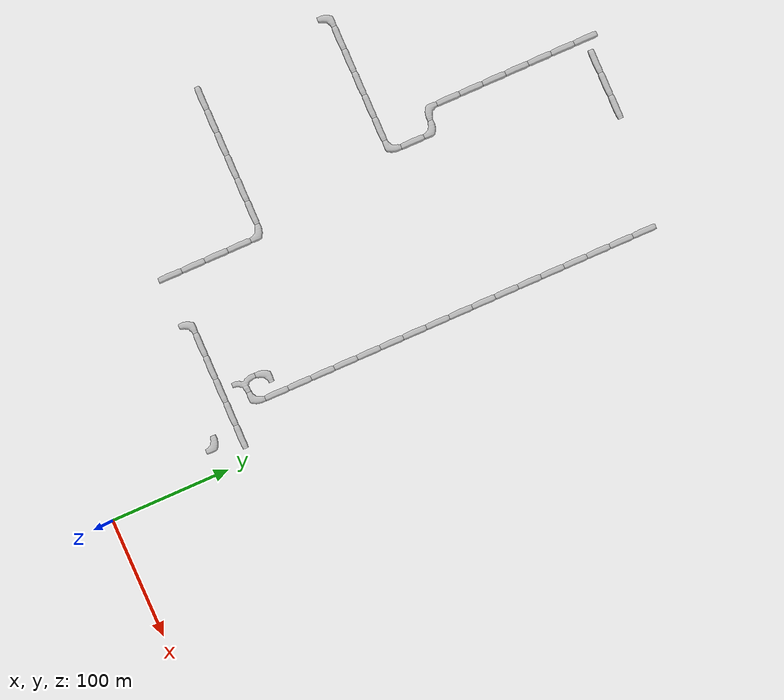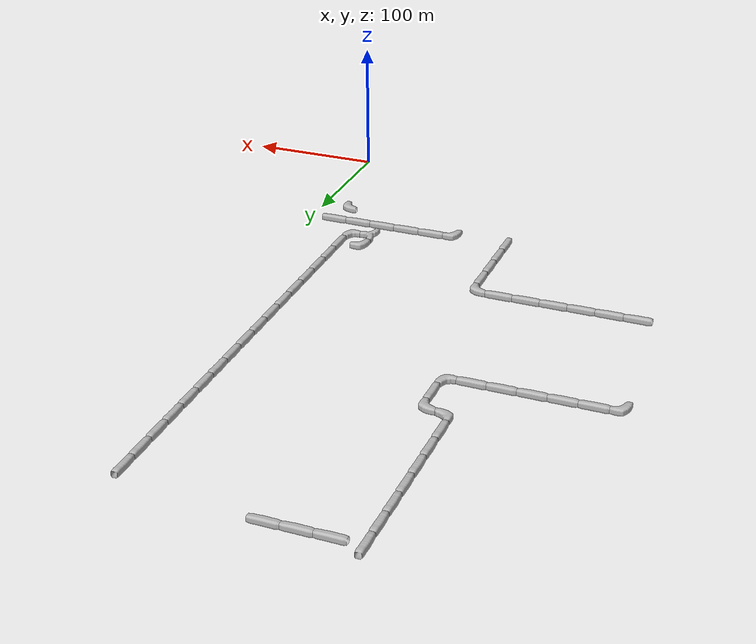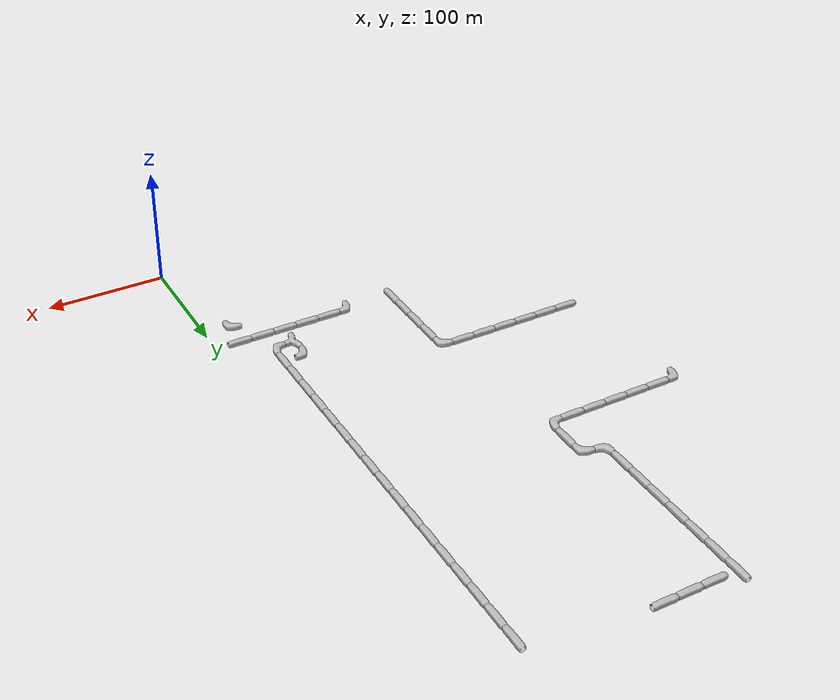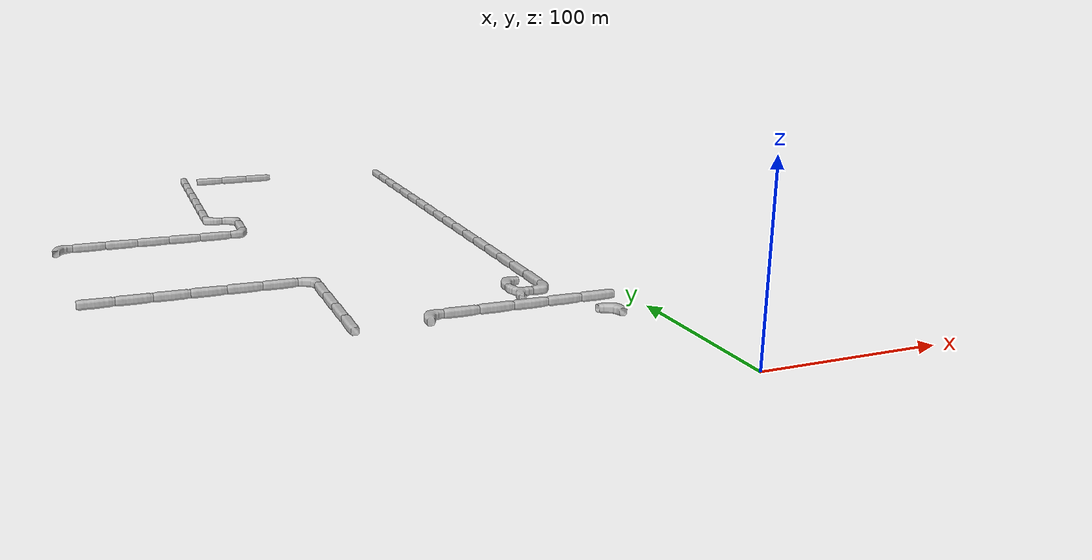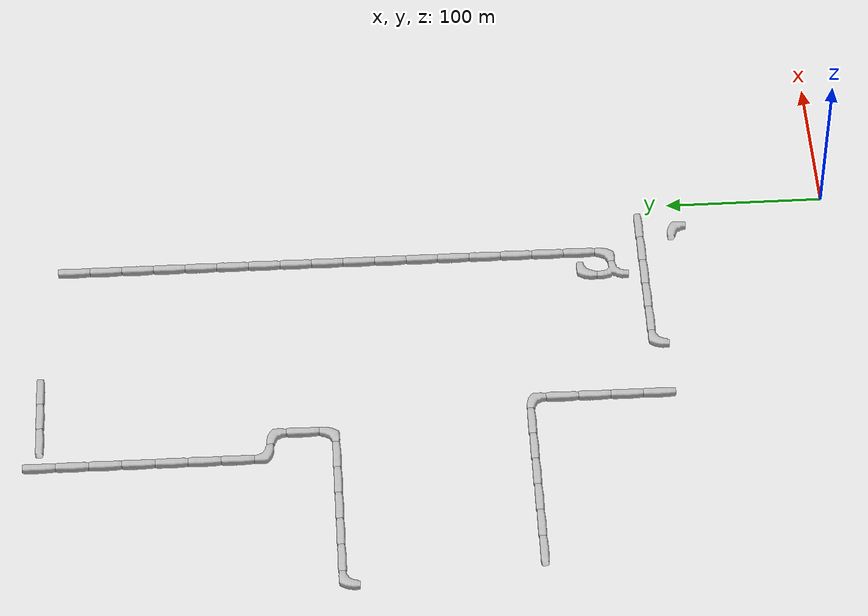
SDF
<sdf version="1.6">
 <world name="cave_32000_4">
  <include>
   <static>true</static>
   <name>cave_-8_6</name>
   <pose>-160 120 0 0 0 0.0</pose>
   <uri>model://cave_straight_20m</uri>
  </include>
  <include>
   <static>true</static>
   <name>cave_-8_7</name>
   <pose>-160 140 0 0 0 0.0</pose>
   <uri>model://cave_straight_20m</uri>
  </include>
  <include>
   <static>true</static>
   <name>cave_-8_8</name>
   <pose>-160 160 0 0 0 0.0</pose>
   <uri>model://cave_straight_20m</uri>
  </include>
  <include>
   <static>true</static>
   <name>cave_-8_9</name>
   <pose>-160 180 0 0 0 0.0</pose>
   <uri>model://cave_straight_20m</uri>
  </include>
  <include>
   <static>true</static>
   <name>cave_-8_10</name>
   <pose>-160 200 0 0 0 3.141592653589793</pose>
   <uri>model://cave_L_20m</uri>
  </include>
  <include>
   <static>true</static>
   <name>cave_-9_10</name>
   <pose>-180 200 0 0 0 1.5707963267948966</pose>
   <uri>model://cave_straight_20m</uri>
  </include>
  <include>
   <static>true</static>
   <name>cave_-10_10</name>
   <pose>-200 200 0 0 0 1.5707963267948966</pose>
   <uri>model://cave_straight_20m</uri>
  </include>
  <include>
   <static>true</static>
   <name>cave_-11_10</name>
   <pose>-220 200 0 0 0 1.5707963267948966</pose>
   <uri>model://cave_straight_20m</uri>
  </include>
  <include>
   <static>true</static>
   <name>cave_-12_10</name>
   <pose>-240 200 0 0 0 1.5707963267948966</pose>
   <uri>model://cave_straight_20m</uri>
  </include>
  <include>
   <static>true</static>
   <name>cave_-13_10</name>
   <pose>-260 200 0 0 0 1.5707963267948966</pose>
   <uri>model://cave_straight_20m</uri>
  </include>
  <include>
   <static>true</static>
   <name>cave_-14_10</name>
   <pose>-280 200 0 0 0 1.5707963267948966</pose>
   <uri>model://cave_straight_20m</uri>
  </include>
  <include>
   <static>true</static>
   <name>cave_-15_16</name>
   <pose>-300 320 0 0 0 -1.5707963267948966</pose>
   <uri>model://cave_L_20m</uri>
  </include>
  <include>
   <static>true</static>
   <name>cave_-14_16</name>
   <pose>-280 320 0 0 0 1.5707963267948966</pose>
   <uri>model://cave_straight_20m</uri>
  </include>
  <include>
   <static>true</static>
   <name>cave_-13_16</name>
   <pose>-260 320 0 0 0 1.5707963267948966</pose>
   <uri>model://cave_straight_20m</uri>
  </include>
  <include>
   <static>true</static>
   <name>cave_-12_16</name>
   <pose>-240 320 0 0 0 1.5707963267948966</pose>
   <uri>model://cave_straight_20m</uri>
  </include>
  <include>
   <static>true</static>
   <name>cave_-11_16</name>
   <pose>-220 320 0 0 0 1.5707963267948966</pose>
   <uri>model://cave_straight_20m</uri>
  </include>
  <include>
   <static>true</static>
   <name>cave_-10_16</name>
   <pose>-200 320 0 0 0 1.5707963267948966</pose>
   <uri>model://cave_straight_20m</uri>
  </include>
  <include>
   <static>true</static>
   <name>cave_-9_16</name>
   <pose>-180 320 0 0 0 1.5707963267948966</pose>
   <uri>model://cave_L_20m</uri>
  </include>
  <include>
   <static>true</static>
   <name>cave_-9_17</name>
   <pose>-180 340 0 0 0 0.0</pose>
   <uri>model://cave_straight_20m</uri>
  </include>
  <include>
   <static>true</static>
   <name>cave_-9_18</name>
   <pose>-180 360 0 0 0 3.141592653589793</pose>
   <uri>model://cave_L_20m</uri>
  </include>
  <include>
   <static>true</static>
   <name>cave_-10_18</name>
   <pose>-200 360 0 0 0 0.0</pose>
   <uri>model://cave_L_20m</uri>
  </include>
  <include>
   <static>true</static>
   <name>cave_-10_19</name>
   <pose>-200 380 0 0 0 0.0</pose>
   <uri>model://cave_straight_20m</uri>
  </include>
  <include>
   <static>true</static>
   <name>cave_-10_20</name>
   <pose>-200 400 0 0 0 0.0</pose>
   <uri>model://cave_straight_20m</uri>
  </include>
  <include>
   <static>true</static>
   <name>cave_-10_21</name>
   <pose>-200 420 0 0 0 0.0</pose>
   <uri>model://cave_straight_20m</uri>
  </include>
  <include>
   <static>true</static>
   <name>cave_-10_22</name>
   <pose>-200 440 0 0 0 0.0</pose>
   <uri>model://cave_straight_20m</uri>
  </include>
  <include>
   <static>true</static>
   <name>cave_-10_23</name>
   <pose>-200 460 0 0 0 0.0</pose>
   <uri>model://cave_straight_20m</uri>
  </include>
  <include>
   <static>true</static>
   <name>cave_-10_24</name>
   <pose>-200 480 0 0 0 0.0</pose>
   <uri>model://cave_straight_20m</uri>
  </include>
  <include>
   <static>true</static>
   <name>cave_-10_25</name>
   <pose>-200 500 0 0 0 0.0</pose>
   <uri>model://cave_straight_20m</uri>
  </include>
  <include>
   <static>true</static>
   <name>cave_-7_25</name>
   <pose>-140 500 0 0 0 1.5707963267948966</pose>
   <uri>model://cave_straight_20m</uri>
  </include>
  <include>
   <static>true</static>
   <name>cave_-8_25</name>
   <pose>-160 500 0 0 0 1.5707963267948966</pose>
   <uri>model://cave_straight_20m</uri>
  </include>
  <include>
   <static>true</static>
   <name>cave_-9_25</name>
   <pose>-180 500 0 0 0 1.5707963267948966</pose>
   <uri>model://cave_straight_20m</uri>
  </include>
  <include>
   <static>true</static>
   <name>cave_-2_24</name>
   <pose>-40 480 0 0 0 0.0</pose>
   <uri>model://cave_straight_20m</uri>
  </include>
  <include>
   <static>true</static>
   <name>cave_-2_23</name>
   <pose>-40 460 0 0 0 0.0</pose>
   <uri>model://cave_straight_20m</uri>
  </include>
  <include>
   <static>true</static>
   <name>cave_-2_22</name>
   <pose>-40 440 0 0 0 0.0</pose>
   <uri>model://cave_straight_20m</uri>
  </include>
  <include>
   <static>true</static>
   <name>cave_-2_21</name>
   <pose>-40 420 0 0 0 0.0</pose>
   <uri>model://cave_straight_20m</uri>
  </include>
  <include>
   <static>true</static>
   <name>cave_-2_20</name>
   <pose>-40 400 0 0 0 0.0</pose>
   <uri>model://cave_straight_20m</uri>
  </include>
  <include>
   <static>true</static>
   <name>cave_-2_19</name>
   <pose>-40 380 0 0 0 0.0</pose>
   <uri>model://cave_straight_20m</uri>
  </include>
  <include>
   <static>true</static>
   <name>cave_-2_18</name>
   <pose>-40 360 0 0 0 0.0</pose>
   <uri>model://cave_straight_20m</uri>
  </include>
  <include>
   <static>true</static>
   <name>cave_-2_17</name>
   <pose>-40 340 0 0 0 0.0</pose>
   <uri>model://cave_straight_20m</uri>
  </include>
  <include>
   <static>true</static>
   <name>cave_-2_16</name>
   <pose>-40 320 0 0 0 0.0</pose>
   <uri>model://cave_straight_20m</uri>
  </include>
  <include>
   <static>true</static>
   <name>cave_-2_15</name>
   <pose>-40 300 0 0 0 0.0</pose>
   <uri>model://cave_straight_20m</uri>
  </include>
  <include>
   <static>true</static>
   <name>cave_-2_14</name>
   <pose>-40 280 0 0 0 0.0</pose>
   <uri>model://cave_straight_20m</uri>
  </include>
  <include>
   <static>true</static>
   <name>cave_-2_13</name>
   <pose>-40 260 0 0 0 0.0</pose>
   <uri>model://cave_straight_20m</uri>
  </include>
  <include>
   <static>true</static>
   <name>cave_-2_12</name>
   <pose>-40 240 0 0 0 0.0</pose>
   <uri>model://cave_straight_20m</uri>
  </include>
  <include>
   <static>true</static>
   <name>cave_-2_11</name>
   <pose>-40 220 0 0 0 0.0</pose>
   <uri>model://cave_straight_20m</uri>
  </include>
  <include>
   <static>true</static>
   <name>cave_-2_10</name>
   <pose>-40 200 0 0 0 0.0</pose>
   <uri>model://cave_straight_20m</uri>
  </include>
  <include>
   <static>true</static>
   <name>cave_-2_9</name>
   <pose>-40 180 0 0 0 0.0</pose>
   <uri>model://cave_straight_20m</uri>
  </include>
  <include>
   <static>true</static>
   <name>cave_-2_8</name>
   <pose>-40 160 0 0 0 0.0</pose>
   <uri>model://cave_straight_20m</uri>
  </include>
  <include>
   <static>true</static>
   <name>cave_-2_7</name>
   <pose>-40 140 0 0 0 1.5707963267948966</pose>
   <uri>model://cave_L_20m</uri>
  </include>
  <include>
   <static>true</static>
   <name>cave_-3_7</name>
   <pose>-60 140 0 0 0 -1.5707963267948966</pose>
   <uri>model://cave_3way_20m</uri>
  </include>
  <include>
   <static>true</static>
   <name>cave_-3_8</name>
   <pose>-60 160 0 0 0 -1.5707963267948966</pose>
   <uri>model://cave_L_20m</uri>
  </include>
  <include>
   <static>true</static>
   <name>cave_-6_6</name>
   <pose>-120 120 0 0 0 -1.5707963267948966</pose>
   <uri>model://cave_L_20m</uri>
  </include>
  <include>
   <static>true</static>
   <name>cave_-5_6</name>
   <pose>-100 120 0 0 0 1.5707963267948966</pose>
   <uri>model://cave_straight_20m</uri>
  </include>
  <include>
   <static>true</static>
   <name>cave_-4_6</name>
   <pose>-80 120 0 0 0 1.5707963267948966</pose>
   <uri>model://cave_straight_20m</uri>
  </include>
  <include>
   <static>true</static>
   <name>cave_-3_6</name>
   <pose>-60 120 0 0 0 1.5707963267948966</pose>
   <uri>model://cave_straight_20m</uri>
  </include>
  <include>
   <static>true</static>
   <name>cave_-2_6</name>
   <pose>-40 120 0 0 0 1.5707963267948966</pose>
   <uri>model://cave_straight_20m</uri>
  </include>
  <include>
   <static>true</static>
   <name>cave_-1_6</name>
   <pose>-20 120 0 0 0 1.5707963267948966</pose>
   <uri>model://cave_straight_20m</uri>
  </include>
  <include>
   <static>true</static>
   <name>cave_-1_5</name>
   <pose>-20 100 0 0 0 3.141592653589793</pose>
   <uri>model://cave_L_20m</uri>
  </include>
 </world>
</sdf>
